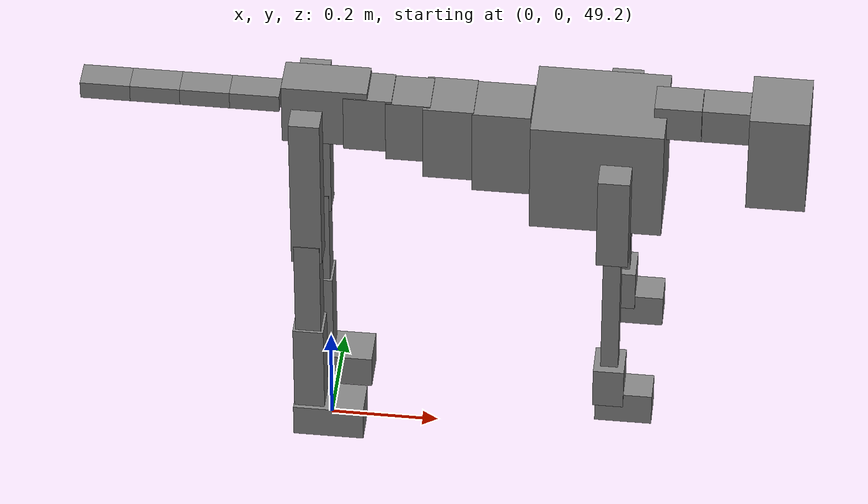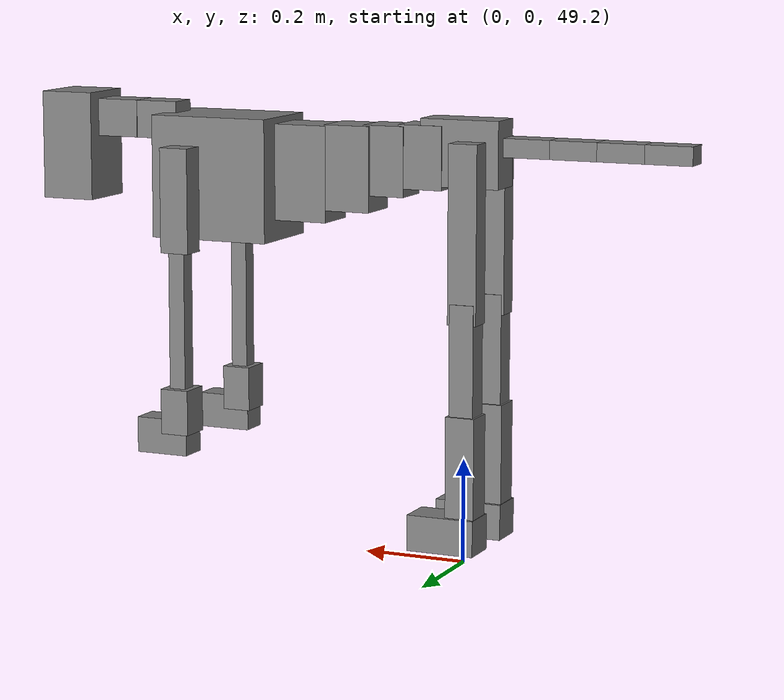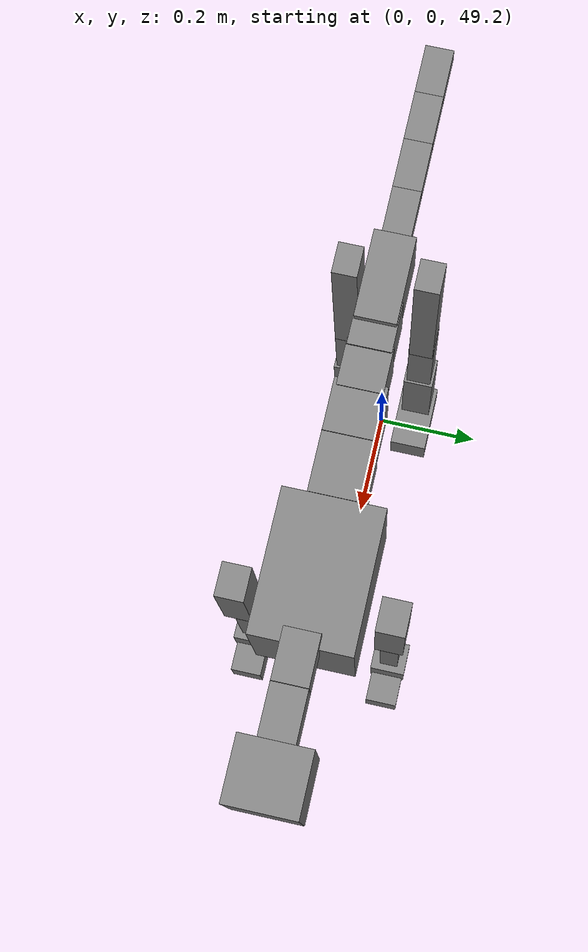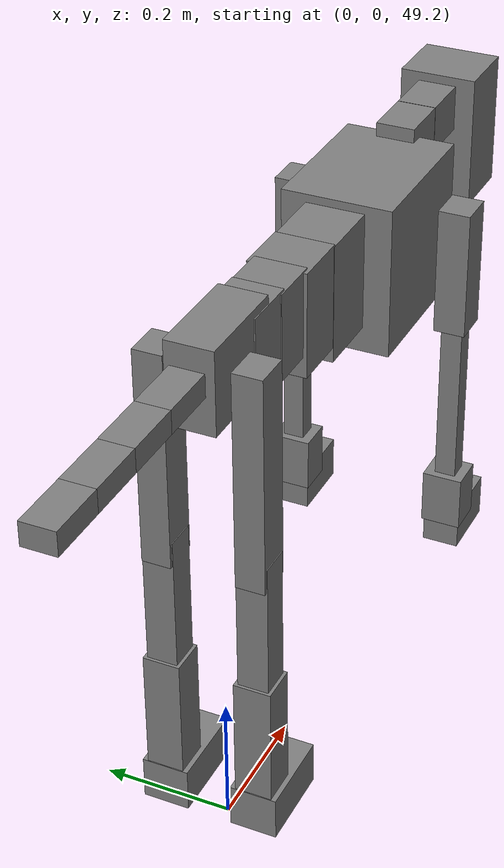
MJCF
<mujoco model="dog">

    <default>
        <joint armature="0.02" stiffness="1" damping="0.2" limited="true"/>
        <geom condim="3" friction="1 0.05 0.05" margin="0.01"/>
        <motor ctrllimited="true" ctrlrange="-1.0 1.0" forcelimited="true" gear="50"/>
    </default>

    <compiler inertiafromgeom="true" angle="radian"/>

    <option timestep="0.016" iterations="50" tolerance="1e-10" solver="Newton" jacobian="dense" cone="pyramidal"/>

    <size nconmax="20000" njmax="60000" nstack="5000000"/>
    <visual>
        <map force="0.1" zfar="30"/>
        <rgba haze="0.15 0.25 0.35 1"/>
        <quality shadowsize="2048"/>
        <global offwidth="800" offheight="800"/>
    </visual>

    <asset>
        <texture type="skybox" builtin="gradient" rgb1="0.3 0.5 0.7" rgb2="0 0 0" width="512" height="512"/>
        <texture name="texplane" type="2d" builtin="checker" rgb1=".2 .3 .4" rgb2=".1 0.15 0.2" width="512" height="512"
                 mark="cross" markrgb=".8 .8 .8"/>
        <texture name="texgeom" type="cube" builtin="flat" mark="cross" width="127" height="1278" rgb1="0.8 0.6 0.4"
                 rgb2="0.8 0.6 0.4" markrgb="1 1 1" random="0.01"/>

        <material name="matplane" reflectance="0.3" texture="texplane" texrepeat="1 1" texuniform="true"/>
        <material name="matgeom" texture="texgeom" texuniform="true" rgba="0.8 0.6 .4 1"/>
    </asset>

    <worldbody>
        <geom name="floor" pos="0 0 0" size="0 0 .25" type="plane" material="matplane" condim="3"/>

        <light directional="false" diffuse=".2 .2 .2" specular="0 0 0" pos="0 0 5" dir="0 0 -1" castshadow="false"/>
        <light mode="targetbodycom" target="torso" directional="false" diffuse=".8 .8 .8" specular="0.3 0.3 0.3"
               pos="0 0 4.0" dir="0 0 -1"/>

        <body name="root" pos="0 0 50">
            <freejoint name="root_1"/>
            <geom type="box" pos="0 0 -0.02" size="0.0774  0.0358  0.063" density="2030"/>

            <body name="spine1" pos="0.054 0 0">
                <joint name="spine1_y" axis="0 1 0" range="0 0.7" limited="true"/>
                <geom type="box" pos="0.02375 0 -0.03" size="0.04375  0.0375  0.05985" density="2030"/>

                <body name="spine2" pos="0.0612 0 0">
                    <joint name="spine2_y" axis="0 1 0" range="-0.15 0.15" limited="true"/>
                    <geom type="box" pos="0.03555  0  -0.04" size="0.04055  0.039  0.06615" density="2030"/>

                    <body name="spine3" pos="0.0730 0 0">
                        <joint name="spine3_y" axis="0 1 0" range="-0.15 0.15" limited="true"/>
                        <geom type="box" pos="0.03555  0  -0.057" size="0.04555  0.0445  0.081" density="2030"/>

                        <body name="spine4" pos="0.0780 0 0">
                            <joint name="spine4_y" axis="0 1 0" range="-0.15 0.15" limited="true"/>
                            <geom type="box" pos="0.05265  0  -0.07" size="0.05265  0.045  0.09135" density="2030"/>

                            <body name="torso" pos="0.1082 0 0">
                                <joint name="torso_y" axis="0 1 0" range="-0.15 0.15" limited="true"/>
                                <geom type="box" pos="0.11925  0  -0.085" size="0.11925  0.085  0.11745"
                                      density="2030"/>

                                <body name="neck1" pos="0.2160  0   0.0180">
                                    <joint name="neck1_y" axis="0 1 0" range="-1.2  -1" limited="true"/>
                                    <geom type="box" pos="0.0423  0  0" size="0.0423  0.03  0.036" density="2325"/>

                                    <body name="neck2" pos="0.0853  0  0">
                                        <joint name="neck2_y" axis="0 1 0" range="0.1  0" limited="true"/>
                                        <geom type="box" pos="0.0423  0  0" size="0.0423  0.03  0.036" density="2325"/>

                                        <body name="head" pos="0.0853  0  0">
                                            <joint name="head_y" axis="0 1 0" range="-0.3  -0.2" limited="true"/>
                                            <geom type="box" pos="0.0531  0  -0.055" size="0.0531  0.06  0.1044"
                                                  density="4030"/>

                                        </body>
                                    </body>
                                </body>

                                <body name="front_shoulder" pos="0.156  0   -0.0480">
                                    <joint name="front_shoulder_y" axis="0 1 0" range="-1 1.5" limited="true"/>
                                    <geom type="box" pos="0 0.13 -0.0732" size="0.0286  0.0244  0.0998" density="1158"/>
                                    <geom type="box" pos="0 -0.13 -0.0732" size="0.0286  0.0244  0.0998"
                                          density="1158"/>

                                    <body name="front_elbow" pos="0  0  -0.1463">
                                        <joint name="front_elbow_y" axis="0 1 0" range="-2 0" limited="true"/>
                                        <geom type="box" pos="0 0.13 -0.1505" size="0.0160  0.0164  0.1505"
                                              density="1081"/>
                                        <geom type="box" pos="0 -0.13 -0.1505" size="0.0160  0.0164  0.1505"
                                              density="1081"/>

                                        <body name="front_wrist" pos="0  0  -0.3009">
                                            <joint name="front_wrist_y" axis="0 1 0" range="-0.2 0" limited="true"/>
                                            <geom type="box" pos="0 0.13 -0.0302" size="0.0281  0.0312  0.0433"
                                                  density="1664"/>
                                            <geom type="box" pos="0 -0.13 -0.0302" size="0.0281  0.0312  0.0433"
                                                  density="1664"/>

                                            <body name="front_finger_end" pos="0  0  -0.0604">
                                                <joint name="front_finger_y" axis="0 1 0" range="-0.4 1"
                                                       limited="true"/>
                                                <geom type="box" pos="0.0284  0.13  -0.0191"
                                                      size="0.0521  0.0284  0.0341" density="1515"/>
                                                <geom type="box" pos="0.0284  -0.13  -0.0191"
                                                      size="0.0521  0.0284  0.0341" density="1515"/>

                                            </body>

                                        </body>
                                    </body>
                                </body>

                            </body>
                        </body>
                    </body>
                </body>
            </body>

            <body name="back_hip" pos="-0.03 0 -0.018">
                <joint name="back_hip_y" axis="0 1 0" range="-1.5 0.3" limited="true"/>
                <geom type="box" pos="0 0.07 -0.1439" size="0.0280  0.0220  0.1667" density="1154"/>
                <geom type="box" pos="0 -0.07 -0.1439" size="0.0280  0.0220  0.1667" density="1154"/>

                <body name="back_knee" pos="0  0  -0.2879">
                    <joint name="back_knee_y" axis="0 1 0" range="0 2.8" limited="true"/>
                    <geom type="box" pos="0 0.07 -0.1027" size="0.0237  0.0233  0.1182" density="1227"/>
                    <geom type="box" pos="0 -0.07 -0.1027" size="0.0237  0.0233  0.1182" density="1227"/>

                    <body name="back_ankle" pos="0  0  -0.2053">
                        <joint name="back_ankle_y" axis="0 1 0" range="-2.2 0" limited="true"/>
                        <geom type="box" pos="0 0.07 -0.0974" size="0.0282  0.0282  0.1087" density="1284"/>
                        <geom type="box" pos="0 -0.07 -0.0974" size="0.0282  0.0282  0.1087" density="1284"/>

                        <body name="back_toe_end" pos="0  0  -0.1948">
                            <joint name="back_toe_y" axis="0 1 0" range="-0.4 1" limited="true"/>
                            <geom type="box" pos="0.0357  0.07  -0.0192" size="0.0654  0.0357  0.0342" density="1515"/>
                            <geom type="box" pos="0.0357  -0.07  -0.0192" size="0.0654  0.0357  0.0342" density="1515"/>

                        </body>
                    </body>
                </body>
            </body>

            <body name="tail1" pos="-0.074 0 -0.006">
                <joint name="tail1_y" axis="0 1 0" range="-0.2 0.2" limited="true"/>
                <geom type="box" pos="-0.0536  0  0" size="0.045  0.025  0.0175" density="1587"/>

                <body name="tail2" pos="-0.09 0 0">
                    <joint name="tail2_y" axis="0 1 0" range="-0.2 0.2" limited="true"/>
                    <geom type="box" pos="-0.0536  0  0" size="0.045  0.025  0.0175" density="1587"/>

                    <body name="tail3" pos="-0.09 0 0">
                        <joint name="tail3_y" axis="0 1 0" range="-0.2 0.2" limited="true"/>
                        <geom type="box" pos="-0.0536  0  0" size="0.045  0.025  0.0175" density="1587"/>

                        <body name="tail4" pos="-0.09 0 0">
                            <joint name="tail4_y" axis="0 1 0" range="-0.2 0.2" limited="true"/>
                            <geom type="box" pos="-0.0536  0  0" size="0.045  0.025  0.0175" density="1587"/>

                        </body>
                    </body>
                </body>
            </body>
        </body>
    </worldbody>

    <actuator>
        <motor joint="spine1_y" forcerange="-150 150     "/>
        <motor joint="spine2_y" forcerange="-150 150     "/>
        <motor joint="spine3_y" forcerange="-150 150     "/>
        <motor joint="spine4_y" forcerange="-150 150     "/>
        <motor joint="torso_y" forcerange="-150 150     "/>
        <motor joint="neck1_y" forcerange="-100 100       "/>
        <motor joint="neck2_y" forcerange="-100 100       "/>
        <motor joint="head_y" forcerange="-150 150       "/>
        <motor joint="front_shoulder_y" forcerange="-120.47 142.44"/>
        <motor joint="front_elbow_y" forcerange="-117.64 101.28"/>
        <motor joint="front_wrist_y" forcerange="-132.70 116.70"/>
        <motor joint="front_finger_y" forcerange="-90.41 21.17"/>
        <motor joint="back_hip_y" forcerange="-262.02 231.06"/>
        <motor joint="back_knee_y" forcerange="-318.34 221.21"/>
        <motor joint="back_angle_y" forcerange="-161.49 189.34"/>
        <motor joint="back_toe_y" forcerange="-99.16 106.10"/>
        <motor joint="tail1_y" forcerange="-50 50     "/>
        <motor joint="tail2_y" forcerange="-50 50     "/>
        <motor joint="tail3_y" forcerange="-50 50     "/>
        <motor joint="tail4_y" forcerange="-50 50     "/>
    </actuator>
</mujoco>
